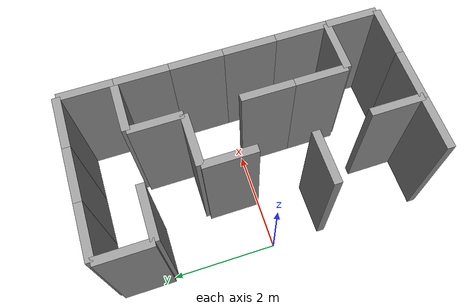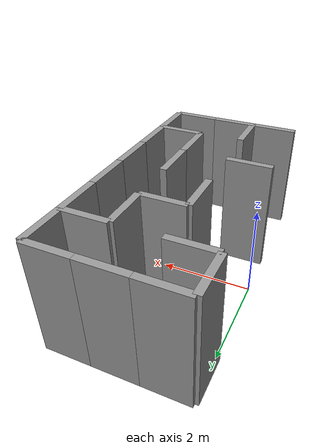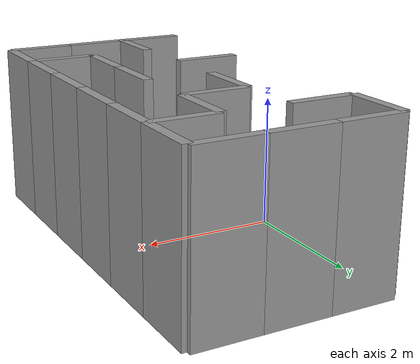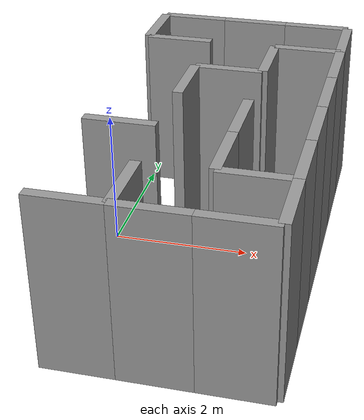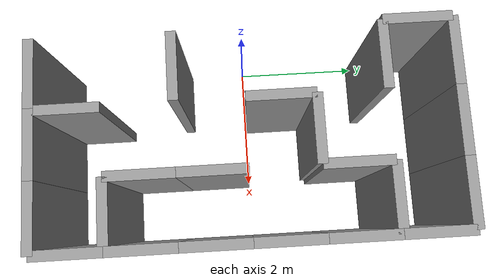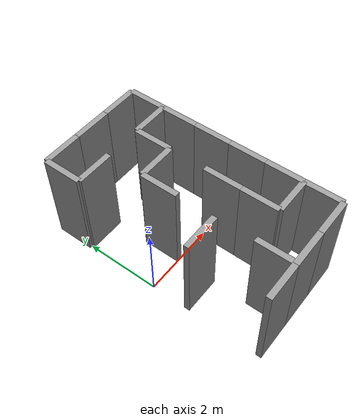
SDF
<sdf version="1.7">
 <model name="maze_6x6">
  <link name="mazeMap::Wall_124">
   <pose>1 0.5 0 0 -0 1.5708</pose>
   <inertial>
    <mass>1</mass>
    <inertia><ixx>1</ixx><ixy>0</ixy><ixz>0</ixz><iyy>1</iyy><iyz>0</iyz><izz>1</izz></inertia>
   </inertial>
   <visual name="Wall_124_Visual">
    <pose>0 0 1.25 0 -0 0</pose>
    <geometry><box><size>1 0.15 2.5</size></box></geometry>
    <material>
     <script><uri>file://media/materials/scripts/gazebo.material</uri><name>Gazebo/Grey</name></script>
     <ambient>1 1 1 1</ambient>
     <shader type="pixel"><normal_map>__default__</normal_map></shader>
     <diffuse>0.7 0.7 0.7 1</diffuse>
     <specular>0.01 0.01 0.01 1</specular>
     <emissive>0 0 0 1</emissive>
    </material>
    <meta><layer>0</layer></meta>
   </visual>
   <collision name="Wall_124_Collision">
    <pose>0 0 1.25 0 -0 0</pose>
    <geometry><box><size>1 0.15 2.5</size></box></geometry>
    <surface>
     <friction>
      <ode><mu>1</mu><mu2>1</mu2><fdir1>0 0 0</fdir1><slip1>0</slip1><slip2>0</slip2></ode>
      <torsional>
       <coefficient>1</coefficient>
       <patch_radius>0</patch_radius>
       <surface_radius>0</surface_radius>
       <use_patch_radius>1</use_patch_radius>
       <ode><slip>0</slip></ode>
      </torsional>
     </friction>
     <bounce><restitution_coefficient>0</restitution_coefficient><threshold>1e+06</threshold></bounce>
     <contact>
      <collide_without_contact>0</collide_without_contact>
      <collide_without_contact_bitmask>1</collide_without_contact_bitmask>
      <collide_bitmask>1</collide_bitmask>
      <ode>
       <soft_cfm>0</soft_cfm>
       <soft_erp>0.2</soft_erp>
       <kp>1e+13</kp>
       <kd>1</kd>
       <max_vel>0.01</max_vel>
       <min_depth>0</min_depth>
      </ode>
      <bullet>
       <split_impulse>1</split_impulse>
       <split_impulse_penetration_threshold>-0.01</split_impulse_penetration_threshold>
       <soft_cfm>0</soft_cfm>
       <soft_erp>0.2</soft_erp>
       <kp>1e+13</kp>
       <kd>1</kd>
      </bullet>
     </contact>
    </surface>
   </collision>
  </link>
  <link name="mazeMap::Wall_133">
   <pose>0.5 -3 0 0 -0 0</pose>
   <inertial>
    <mass>1</mass>
    <inertia><ixx>1</ixx><ixy>0</ixy><ixz>0</ixz><iyy>1</iyy><iyz>0</iyz><izz>1</izz></inertia>
   </inertial>
   <visual name="Wall_133_Visual">
    <pose>0 0 1.25 0 -0 0</pose>
    <geometry><box><size>1 0.15 2.5</size></box></geometry>
    <material>
     <script><uri>file://media/materials/scripts/gazebo.material</uri><name>Gazebo/Grey</name></script>
     <ambient>1 1 1 1</ambient>
     <shader type="pixel"><normal_map>__default__</normal_map></shader>
     <diffuse>0.7 0.7 0.7 1</diffuse>
     <specular>0.01 0.01 0.01 1</specular>
     <emissive>0 0 0 1</emissive>
    </material>
    <meta><layer>0</layer></meta>
   </visual>
   <collision name="Wall_133_Collision">
    <pose>0 0 1.25 0 -0 0</pose>
    <geometry><box><size>1 0.15 2.5</size></box></geometry>
    <surface>
     <friction>
      <ode><mu>1</mu><mu2>1</mu2><fdir1>0 0 0</fdir1><slip1>0</slip1><slip2>0</slip2></ode>
      <torsional>
       <coefficient>1</coefficient>
       <patch_radius>0</patch_radius>
       <surface_radius>0</surface_radius>
       <use_patch_radius>1</use_patch_radius>
       <ode><slip>0</slip></ode>
      </torsional>
     </friction>
     <bounce><restitution_coefficient>0</restitution_coefficient><threshold>1e+06</threshold></bounce>
     <contact>
      <collide_without_contact>0</collide_without_contact>
      <collide_without_contact_bitmask>1</collide_without_contact_bitmask>
      <collide_bitmask>1</collide_bitmask>
      <ode>
       <soft_cfm>0</soft_cfm>
       <soft_erp>0.2</soft_erp>
       <kp>1e+13</kp>
       <kd>1</kd>
       <max_vel>0.01</max_vel>
       <min_depth>0</min_depth>
      </ode>
      <bullet>
       <split_impulse>1</split_impulse>
       <split_impulse_penetration_threshold>-0.01</split_impulse_penetration_threshold>
       <soft_cfm>0</soft_cfm>
       <soft_erp>0.2</soft_erp>
       <kp>1e+13</kp>
       <kd>1</kd>
      </bullet>
     </contact>
    </surface>
   </collision>
  </link>
  <link name="mazeMap::Wall_134">
   <pose>1.03347 -2.51386 0 0 -0 1.5708</pose>
   <visual name="Wall_134_Visual">
    <pose>0 0 1.25 0 -0 0</pose>
    <geometry><box><size>1 0.15 2.5</size></box></geometry>
    <material>
     <script><uri>file://media/materials/scripts/gazebo.material</uri><name>Gazebo/Grey</name></script>
     <ambient>1 1 1 1</ambient>
     <shader type="pixel"/>
    </material>
    <meta><layer>0</layer></meta>
   </visual>
   <collision name="Wall_134_Collision">
    <pose>0 0 1.25 0 -0 0</pose>
    <geometry><box><size>1 0.15 2.5</size></box></geometry>
    <surface>
     <friction>
      <ode><mu>1</mu><mu2>1</mu2><fdir1>0 0 0</fdir1><slip1>0</slip1><slip2>0</slip2></ode>
      <torsional>
       <coefficient>1</coefficient>
       <patch_radius>0</patch_radius>
       <surface_radius>0</surface_radius>
       <use_patch_radius>1</use_patch_radius>
       <ode><slip>0</slip></ode>
      </torsional>
     </friction>
     <bounce><restitution_coefficient>0</restitution_coefficient><threshold>1e+06</threshold></bounce>
     <contact>
      <collide_without_contact>0</collide_without_contact>
      <collide_without_contact_bitmask>1</collide_without_contact_bitmask>
      <collide_bitmask>1</collide_bitmask>
      <ode>
       <soft_cfm>0</soft_cfm>
       <soft_erp>0.2</soft_erp>
       <kp>1e+13</kp>
       <kd>1</kd>
       <max_vel>0.01</max_vel>
       <min_depth>0</min_depth>
      </ode>
      <bullet>
       <split_impulse>1</split_impulse>
       <split_impulse_penetration_threshold>-0.01</split_impulse_penetration_threshold>
       <soft_cfm>0</soft_cfm>
       <soft_erp>0.2</soft_erp>
       <kp>1e+13</kp>
       <kd>1</kd>
      </bullet>
     </contact>
    </surface>
   </collision>
  </link>
  <link name="mazeMap::Wall_137">
   <pose>0.5 -1 0 0 -0 0</pose>
   <inertial>
    <mass>1</mass>
    <inertia><ixx>1</ixx><ixy>0</ixy><ixz>0</ixz><iyy>1</iyy><iyz>0</iyz><izz>1</izz></inertia>
   </inertial>
   <visual name="Wall_137_Visual">
    <pose>0 0 1.25 0 -0 0</pose>
    <geometry><box><size>1 0.15 2.5</size></box></geometry>
    <material>
     <script><uri>file://media/materials/scripts/gazebo.material</uri><name>Gazebo/Grey</name></script>
     <ambient>1 1 1 1</ambient>
     <shader type="pixel"><normal_map>__default__</normal_map></shader>
     <diffuse>0.7 0.7 0.7 1</diffuse>
     <specular>0.01 0.01 0.01 1</specular>
     <emissive>0 0 0 1</emissive>
    </material>
    <meta><layer>0</layer></meta>
   </visual>
   <collision name="Wall_137_Collision">
    <pose>0 0 1.25 0 -0 0</pose>
    <geometry><box><size>1 0.15 2.5</size></box></geometry>
    <surface>
     <friction>
      <ode><mu>1</mu><mu2>1</mu2><fdir1>0 0 0</fdir1><slip1>0</slip1><slip2>0</slip2></ode>
      <torsional>
       <coefficient>1</coefficient>
       <patch_radius>0</patch_radius>
       <surface_radius>0</surface_radius>
       <use_patch_radius>1</use_patch_radius>
       <ode><slip>0</slip></ode>
      </torsional>
     </friction>
     <bounce><restitution_coefficient>0</restitution_coefficient><threshold>1e+06</threshold></bounce>
     <contact>
      <collide_without_contact>0</collide_without_contact>
      <collide_without_contact_bitmask>1</collide_without_contact_bitmask>
      <collide_bitmask>1</collide_bitmask>
      <ode>
       <soft_cfm>0</soft_cfm>
       <soft_erp>0.2</soft_erp>
       <kp>1e+13</kp>
       <kd>1</kd>
       <max_vel>0.01</max_vel>
       <min_depth>0</min_depth>
      </ode>
      <bullet>
       <split_impulse>1</split_impulse>
       <split_impulse_penetration_threshold>-0.01</split_impulse_penetration_threshold>
       <soft_cfm>0</soft_cfm>
       <soft_erp>0.2</soft_erp>
       <kp>1e+13</kp>
       <kd>1</kd>
      </bullet>
     </contact>
    </surface>
   </collision>
  </link>
  <link name="mazeMap::Wall_141">
   <pose>1.5 -3 0 0 -0 3.14159</pose>
   <inertial>
    <mass>1</mass>
    <inertia><ixx>1</ixx><ixy>0</ixy><ixz>0</ixz><iyy>1</iyy><iyz>0</iyz><izz>1</izz></inertia>
   </inertial>
   <visual name="Wall_141_Visual">
    <pose>0 0 1.25 0 -0 0</pose>
    <geometry><box><size>1 0.15 2.5</size></box></geometry>
    <material>
     <script><uri>file://media/materials/scripts/gazebo.material</uri><name>Gazebo/Grey</name></script>
     <ambient>1 1 1 1</ambient>
     <shader type="pixel"><normal_map>__default__</normal_map></shader>
     <diffuse>0.7 0.7 0.7 1</diffuse>
     <specular>0.01 0.01 0.01 1</specular>
     <emissive>0 0 0 1</emissive>
    </material>
    <meta><layer>0</layer></meta>
   </visual>
   <collision name="Wall_141_Collision">
    <pose>0 0 1.25 0 -0 0</pose>
    <geometry><box><size>1 0.15 2.5</size></box></geometry>
    <surface>
     <friction>
      <ode><mu>1</mu><mu2>1</mu2><fdir1>0 0 0</fdir1><slip1>0</slip1><slip2>0</slip2></ode>
      <torsional>
       <coefficient>1</coefficient>
       <patch_radius>0</patch_radius>
       <surface_radius>0</surface_radius>
       <use_patch_radius>1</use_patch_radius>
       <ode><slip>0</slip></ode>
      </torsional>
     </friction>
     <bounce><restitution_coefficient>0</restitution_coefficient><threshold>1e+06</threshold></bounce>
     <contact>
      <collide_without_contact>0</collide_without_contact>
      <collide_without_contact_bitmask>1</collide_without_contact_bitmask>
      <collide_bitmask>1</collide_bitmask>
      <ode>
       <soft_cfm>0</soft_cfm>
       <soft_erp>0.2</soft_erp>
       <kp>1e+13</kp>
       <kd>1</kd>
       <max_vel>0.01</max_vel>
       <min_depth>0</min_depth>
      </ode>
      <bullet>
       <split_impulse>1</split_impulse>
       <split_impulse_penetration_threshold>-0.01</split_impulse_penetration_threshold>
       <soft_cfm>0</soft_cfm>
       <soft_erp>0.2</soft_erp>
       <kp>1e+13</kp>
       <kd>1</kd>
      </bullet>
     </contact>
    </surface>
   </collision>
  </link>
  <link name="mazeMap::Wall_145">
   <pose>2 -1.5 0 0 0 -1.5708</pose>
   <inertial>
    <mass>1</mass>
    <inertia><ixx>1</ixx><ixy>0</ixy><ixz>0</ixz><iyy>1</iyy><iyz>0</iyz><izz>1</izz></inertia>
   </inertial>
   <visual name="Wall_145_Visual">
    <pose>0 0 1.25 0 -0 0</pose>
    <geometry><box><size>1 0.15 2.5</size></box></geometry>
    <material>
     <script><uri>file://media/materials/scripts/gazebo.material</uri><name>Gazebo/Grey</name></script>
     <ambient>1 1 1 1</ambient>
     <shader type="pixel"><normal_map>__default__</normal_map></shader>
     <diffuse>0.7 0.7 0.7 1</diffuse>
     <specular>0.01 0.01 0.01 1</specular>
     <emissive>0 0 0 1</emissive>
    </material>
    <meta><layer>0</layer></meta>
   </visual>
   <collision name="Wall_145_Collision">
    <pose>0 0 1.25 0 -0 0</pose>
    <geometry><box><size>1 0.15 2.5</size></box></geometry>
    <surface>
     <friction>
      <ode><mu>1</mu><mu2>1</mu2><fdir1>0 0 0</fdir1><slip1>0</slip1><slip2>0</slip2></ode>
      <torsional>
       <coefficient>1</coefficient>
       <patch_radius>0</patch_radius>
       <surface_radius>0</surface_radius>
       <use_patch_radius>1</use_patch_radius>
       <ode><slip>0</slip></ode>
      </torsional>
     </friction>
     <bounce><restitution_coefficient>0</restitution_coefficient><threshold>1e+06</threshold></bounce>
     <contact>
      <collide_without_contact>0</collide_without_contact>
      <collide_without_contact_bitmask>1</collide_without_contact_bitmask>
      <collide_bitmask>1</collide_bitmask>
      <ode>
       <soft_cfm>0</soft_cfm>
       <soft_erp>0.2</soft_erp>
       <kp>1e+13</kp>
       <kd>1</kd>
       <max_vel>0.01</max_vel>
       <min_depth>0</min_depth>
      </ode>
      <bullet>
       <split_impulse>1</split_impulse>
       <split_impulse_penetration_threshold>-0.01</split_impulse_penetration_threshold>
       <soft_cfm>0</soft_cfm>
       <soft_erp>0.2</soft_erp>
       <kp>1e+13</kp>
       <kd>1</kd>
      </bullet>
     </contact>
    </surface>
   </collision>
  </link>
  <link name="mazeMap::Wall_146">
   <pose>2.5 -2 0 0 -0 0</pose>
   <inertial>
    <mass>1</mass>
    <inertia><ixx>1</ixx><ixy>0</ixy><ixz>0</ixz><iyy>1</iyy><iyz>0</iyz><izz>1</izz></inertia>
   </inertial>
   <visual name="Wall_146_Visual">
    <pose>0 0 1.25 0 -0 0</pose>
    <geometry><box><size>1 0.15 2.5</size></box></geometry>
    <material>
     <script><uri>file://media/materials/scripts/gazebo.material</uri><name>Gazebo/Grey</name></script>
     <ambient>1 1 1 1</ambient>
     <shader type="pixel"><normal_map>__default__</normal_map></shader>
     <diffuse>0.7 0.7 0.7 1</diffuse>
     <specular>0.01 0.01 0.01 1</specular>
     <emissive>0 0 0 1</emissive>
    </material>
    <meta><layer>0</layer></meta>
   </visual>
   <collision name="Wall_146_Collision">
    <pose>0 0 1.25 0 -0 0</pose>
    <geometry><box><size>1 0.15 2.5</size></box></geometry>
    <surface>
     <friction>
      <ode><mu>1</mu><mu2>1</mu2><fdir1>0 0 0</fdir1><slip1>0</slip1><slip2>0</slip2></ode>
      <torsional>
       <coefficient>1</coefficient>
       <patch_radius>0</patch_radius>
       <surface_radius>0</surface_radius>
       <use_patch_radius>1</use_patch_radius>
       <ode><slip>0</slip></ode>
      </torsional>
     </friction>
     <bounce><restitution_coefficient>0</restitution_coefficient><threshold>1e+06</threshold></bounce>
     <contact>
      <collide_without_contact>0</collide_without_contact>
      <collide_without_contact_bitmask>1</collide_without_contact_bitmask>
      <collide_bitmask>1</collide_bitmask>
      <ode>
       <soft_cfm>0</soft_cfm>
       <soft_erp>0.2</soft_erp>
       <kp>1e+13</kp>
       <kd>1</kd>
       <max_vel>0.01</max_vel>
       <min_depth>0</min_depth>
      </ode>
      <bullet>
       <split_impulse>1</split_impulse>
       <split_impulse_penetration_threshold>-0.01</split_impulse_penetration_threshold>
       <soft_cfm>0</soft_cfm>
       <soft_erp>0.2</soft_erp>
       <kp>1e+13</kp>
       <kd>1</kd>
      </bullet>
     </contact>
    </surface>
   </collision>
  </link>
  <link name="mazeMap::Wall_147">
   <pose>3 -2.5 0 0 0 -1.5708</pose>
   <inertial>
    <mass>1</mass>
    <inertia><ixx>1</ixx><ixy>0</ixy><ixz>0</ixz><iyy>1</iyy><iyz>0</iyz><izz>1</izz></inertia>
   </inertial>
   <visual name="Wall_147_Visual">
    <pose>0 0 1.25 0 -0 0</pose>
    <geometry><box><size>1 0.15 2.5</size></box></geometry>
    <material>
     <script><uri>file://media/materials/scripts/gazebo.material</uri><name>Gazebo/Grey</name></script>
     <ambient>1 1 1 1</ambient>
     <shader type="pixel"><normal_map>__default__</normal_map></shader>
     <diffuse>0.7 0.7 0.7 1</diffuse>
     <specular>0.01 0.01 0.01 1</specular>
     <emissive>0 0 0 1</emissive>
    </material>
    <meta><layer>0</layer></meta>
   </visual>
   <collision name="Wall_147_Collision">
    <pose>0 0 1.25 0 -0 0</pose>
    <geometry><box><size>1 0.15 2.5</size></box></geometry>
    <surface>
     <friction>
      <ode><mu>1</mu><mu2>1</mu2><fdir1>0 0 0</fdir1><slip1>0</slip1><slip2>0</slip2></ode>
      <torsional>
       <coefficient>1</coefficient>
       <patch_radius>0</patch_radius>
       <surface_radius>0</surface_radius>
       <use_patch_radius>1</use_patch_radius>
       <ode><slip>0</slip></ode>
      </torsional>
     </friction>
     <bounce><restitution_coefficient>0</restitution_coefficient><threshold>1e+06</threshold></bounce>
     <contact>
      <collide_without_contact>0</collide_without_contact>
      <collide_without_contact_bitmask>1</collide_without_contact_bitmask>
      <collide_bitmask>1</collide_bitmask>
      <ode>
       <soft_cfm>0</soft_cfm>
       <soft_erp>0.2</soft_erp>
       <kp>1e+13</kp>
       <kd>1</kd>
       <max_vel>0.01</max_vel>
       <min_depth>0</min_depth>
      </ode>
      <bullet>
       <split_impulse>1</split_impulse>
       <split_impulse_penetration_threshold>-0.01</split_impulse_penetration_threshold>
       <soft_cfm>0</soft_cfm>
       <soft_erp>0.2</soft_erp>
       <kp>1e+13</kp>
       <kd>1</kd>
      </bullet>
     </contact>
    </surface>
   </collision>
  </link>
  <link name="mazeMap::Wall_148">
   <pose>2.5 -3 0 0 -0 3.14159</pose>
   <inertial>
    <mass>1</mass>
    <inertia><ixx>1</ixx><ixy>0</ixy><ixz>0</ixz><iyy>1</iyy><iyz>0</iyz><izz>1</izz></inertia>
   </inertial>
   <visual name="Wall_148_Visual">
    <pose>0 0 1.25 0 -0 0</pose>
    <geometry><box><size>1 0.15 2.5</size></box></geometry>
    <material>
     <script><uri>file://media/materials/scripts/gazebo.material</uri><name>Gazebo/Grey</name></script>
     <ambient>1 1 1 1</ambient>
     <shader type="pixel"><normal_map>__default__</normal_map></shader>
     <diffuse>0.7 0.7 0.7 1</diffuse>
     <specular>0.01 0.01 0.01 1</specular>
     <emissive>0 0 0 1</emissive>
    </material>
    <meta><layer>0</layer></meta>
   </visual>
   <collision name="Wall_148_Collision">
    <pose>0 0 1.25 0 -0 0</pose>
    <geometry><box><size>1 0.15 2.5</size></box></geometry>
    <surface>
     <friction>
      <ode><mu>1</mu><mu2>1</mu2><fdir1>0 0 0</fdir1><slip1>0</slip1><slip2>0</slip2></ode>
      <torsional>
       <coefficient>1</coefficient>
       <patch_radius>0</patch_radius>
       <surface_radius>0</surface_radius>
       <use_patch_radius>1</use_patch_radius>
       <ode><slip>0</slip></ode>
      </torsional>
     </friction>
     <bounce><restitution_coefficient>0</restitution_coefficient><threshold>1e+06</threshold></bounce>
     <contact>
      <collide_without_contact>0</collide_without_contact>
      <collide_without_contact_bitmask>1</collide_without_contact_bitmask>
      <collide_bitmask>1</collide_bitmask>
      <ode>
       <soft_cfm>0</soft_cfm>
       <soft_erp>0.2</soft_erp>
       <kp>1e+13</kp>
       <kd>1</kd>
       <max_vel>0.01</max_vel>
       <min_depth>0</min_depth>
      </ode>
      <bullet>
       <split_impulse>1</split_impulse>
       <split_impulse_penetration_threshold>-0.01</split_impulse_penetration_threshold>
       <soft_cfm>0</soft_cfm>
       <soft_erp>0.2</soft_erp>
       <kp>1e+13</kp>
       <kd>1</kd>
      </bullet>
     </contact>
    </surface>
   </collision>
  </link>
  <link name="mazeMap::Wall_150">
   <pose>1.5 1 0 0 -0 0</pose>
   <inertial>
    <mass>1</mass>
    <inertia><ixx>1</ixx><ixy>0</ixy><ixz>0</ixz><iyy>1</iyy><iyz>0</iyz><izz>1</izz></inertia>
   </inertial>
   <visual name="Wall_150_Visual">
    <pose>0 0 1.25 0 -0 0</pose>
    <geometry><box><size>1 0.15 2.5</size></box></geometry>
    <material>
     <script><uri>file://media/materials/scripts/gazebo.material</uri><name>Gazebo/Grey</name></script>
     <ambient>1 1 1 1</ambient>
     <shader type="pixel"><normal_map>__default__</normal_map></shader>
     <diffuse>0.7 0.7 0.7 1</diffuse>
     <specular>0.01 0.01 0.01 1</specular>
     <emissive>0 0 0 1</emissive>
    </material>
    <meta><layer>0</layer></meta>
   </visual>
   <collision name="Wall_150_Collision">
    <pose>0 0 1.25 0 -0 0</pose>
    <geometry><box><size>1 0.15 2.5</size></box></geometry>
    <surface>
     <friction>
      <ode><mu>1</mu><mu2>1</mu2><fdir1>0 0 0</fdir1><slip1>0</slip1><slip2>0</slip2></ode>
      <torsional>
       <coefficient>1</coefficient>
       <patch_radius>0</patch_radius>
       <surface_radius>0</surface_radius>
       <use_patch_radius>1</use_patch_radius>
       <ode><slip>0</slip></ode>
      </torsional>
     </friction>
     <bounce><restitution_coefficient>0</restitution_coefficient><threshold>1e+06</threshold></bounce>
     <contact>
      <collide_without_contact>0</collide_without_contact>
      <collide_without_contact_bitmask>1</collide_without_contact_bitmask>
      <collide_bitmask>1</collide_bitmask>
      <ode>
       <soft_cfm>0</soft_cfm>
       <soft_erp>0.2</soft_erp>
       <kp>1e+13</kp>
       <kd>1</kd>
       <max_vel>0.01</max_vel>
       <min_depth>0</min_depth>
      </ode>
      <bullet>
       <split_impulse>1</split_impulse>
       <split_impulse_penetration_threshold>-0.01</split_impulse_penetration_threshold>
       <soft_cfm>0</soft_cfm>
       <soft_erp>0.2</soft_erp>
       <kp>1e+13</kp>
       <kd>1</kd>
      </bullet>
     </contact>
    </surface>
   </collision>
  </link>
  <link name="mazeMap::Wall_154">
   <pose>2 -0.5 0 0 0 -1.5708</pose>
   <inertial>
    <mass>1</mass>
    <inertia><ixx>1</ixx><ixy>0</ixy><ixz>0</ixz><iyy>1</iyy><iyz>0</iyz><izz>1</izz></inertia>
   </inertial>
   <visual name="Wall_154_Visual">
    <pose>0 0 1.25 0 -0 0</pose>
    <geometry><box><size>1 0.15 2.5</size></box></geometry>
    <material>
     <script><uri>file://media/materials/scripts/gazebo.material</uri><name>Gazebo/Grey</name></script>
     <ambient>1 1 1 1</ambient>
     <shader type="pixel"><normal_map>__default__</normal_map></shader>
     <diffuse>0.7 0.7 0.7 1</diffuse>
     <specular>0.01 0.01 0.01 1</specular>
     <emissive>0 0 0 1</emissive>
    </material>
    <meta><layer>0</layer></meta>
   </visual>
   <collision name="Wall_154_Collision">
    <pose>0 0 1.25 0 -0 0</pose>
    <geometry><box><size>1 0.15 2.5</size></box></geometry>
    <surface>
     <friction>
      <ode><mu>1</mu><mu2>1</mu2><fdir1>0 0 0</fdir1><slip1>0</slip1><slip2>0</slip2></ode>
      <torsional>
       <coefficient>1</coefficient>
       <patch_radius>0</patch_radius>
       <surface_radius>0</surface_radius>
       <use_patch_radius>1</use_patch_radius>
       <ode><slip>0</slip></ode>
      </torsional>
     </friction>
     <bounce><restitution_coefficient>0</restitution_coefficient><threshold>1e+06</threshold></bounce>
     <contact>
      <collide_without_contact>0</collide_without_contact>
      <collide_without_contact_bitmask>1</collide_without_contact_bitmask>
      <collide_bitmask>1</collide_bitmask>
      <ode>
       <soft_cfm>0</soft_cfm>
       <soft_erp>0.2</soft_erp>
       <kp>1e+13</kp>
       <kd>1</kd>
       <max_vel>0.01</max_vel>
       <min_depth>0</min_depth>
      </ode>
      <bullet>
       <split_impulse>1</split_impulse>
       <split_impulse_penetration_threshold>-0.01</split_impulse_penetration_threshold>
       <soft_cfm>0</soft_cfm>
       <soft_erp>0.2</soft_erp>
       <kp>1e+13</kp>
       <kd>1</kd>
      </bullet>
     </contact>
    </surface>
   </collision>
  </link>
  <link name="mazeMap::Wall_156">
   <pose>3 -1.5 0 0 -0 1.5708</pose>
   <inertial>
    <mass>1</mass>
    <inertia><ixx>1</ixx><ixy>0</ixy><ixz>0</ixz><iyy>1</iyy><iyz>0</iyz><izz>1</izz></inertia>
   </inertial>
   <visual name="Wall_156_Visual">
    <pose>0 0 1.25 0 -0 0</pose>
    <geometry><box><size>1 0.15 2.5</size></box></geometry>
    <material>
     <script><uri>file://media/materials/scripts/gazebo.material</uri><name>Gazebo/Grey</name></script>
     <ambient>1 1 1 1</ambient>
     <shader type="pixel"><normal_map>__default__</normal_map></shader>
     <diffuse>0.7 0.7 0.7 1</diffuse>
     <specular>0.01 0.01 0.01 1</specular>
     <emissive>0 0 0 1</emissive>
    </material>
    <meta><layer>0</layer></meta>
   </visual>
   <collision name="Wall_156_Collision">
    <pose>0 0 1.25 0 -0 0</pose>
    <geometry><box><size>1 0.15 2.5</size></box></geometry>
    <surface>
     <friction>
      <ode><mu>1</mu><mu2>1</mu2><fdir1>0 0 0</fdir1><slip1>0</slip1><slip2>0</slip2></ode>
      <torsional>
       <coefficient>1</coefficient>
       <patch_radius>0</patch_radius>
       <surface_radius>0</surface_radius>
       <use_patch_radius>1</use_patch_radius>
       <ode><slip>0</slip></ode>
      </torsional>
     </friction>
     <bounce><restitution_coefficient>0</restitution_coefficient><threshold>1e+06</threshold></bounce>
     <contact>
      <collide_without_contact>0</collide_without_contact>
      <collide_without_contact_bitmask>1</collide_without_contact_bitmask>
      <collide_bitmask>1</collide_bitmask>
      <ode>
       <soft_cfm>0</soft_cfm>
       <soft_erp>0.2</soft_erp>
       <kp>1e+13</kp>
       <kd>1</kd>
       <max_vel>0.01</max_vel>
       <min_depth>0</min_depth>
      </ode>
      <bullet>
       <split_impulse>1</split_impulse>
       <split_impulse_penetration_threshold>-0.01</split_impulse_penetration_threshold>
       <soft_cfm>0</soft_cfm>
       <soft_erp>0.2</soft_erp>
       <kp>1e+13</kp>
       <kd>1</kd>
      </bullet>
     </contact>
    </surface>
   </collision>
  </link>
  <link name="mazeMap::Wall_160">
   <pose>3 -0.5 0 0 0 -1.5708</pose>
   <inertial>
    <mass>1</mass>
    <inertia><ixx>1</ixx><ixy>0</ixy><ixz>0</ixz><iyy>1</iyy><iyz>0</iyz><izz>1</izz></inertia>
   </inertial>
   <visual name="Wall_160_Visual">
    <pose>0 0 1.25 0 -0 0</pose>
    <geometry><box><size>1 0.15 2.5</size></box></geometry>
    <material>
     <script><uri>file://media/materials/scripts/gazebo.material</uri><name>Gazebo/Grey</name></script>
     <ambient>1 1 1 1</ambient>
     <shader type="pixel"><normal_map>__default__</normal_map></shader>
     <diffuse>0.7 0.7 0.7 1</diffuse>
     <specular>0.01 0.01 0.01 1</specular>
     <emissive>0 0 0 1</emissive>
    </material>
    <meta><layer>0</layer></meta>
   </visual>
   <collision name="Wall_160_Collision">
    <pose>0 0 1.25 0 -0 0</pose>
    <geometry><box><size>1 0.15 2.5</size></box></geometry>
    <surface>
     <friction>
      <ode><mu>1</mu><mu2>1</mu2><fdir1>0 0 0</fdir1><slip1>0</slip1><slip2>0</slip2></ode>
      <torsional>
       <coefficient>1</coefficient>
       <patch_radius>0</patch_radius>
       <surface_radius>0</surface_radius>
       <use_patch_radius>1</use_patch_radius>
       <ode><slip>0</slip></ode>
      </torsional>
     </friction>
     <bounce><restitution_coefficient>0</restitution_coefficient><threshold>1e+06</threshold></bounce>
     <contact>
      <collide_without_contact>0</collide_without_contact>
      <collide_without_contact_bitmask>1</collide_without_contact_bitmask>
      <collide_bitmask>1</collide_bitmask>
      <ode>
       <soft_cfm>0</soft_cfm>
       <soft_erp>0.2</soft_erp>
       <kp>1e+13</kp>
       <kd>1</kd>
       <max_vel>0.01</max_vel>
       <min_depth>0</min_depth>
      </ode>
      <bullet>
       <split_impulse>1</split_impulse>
       <split_impulse_penetration_threshold>-0.01</split_impulse_penetration_threshold>
       <soft_cfm>0</soft_cfm>
       <soft_erp>0.2</soft_erp>
       <kp>1e+13</kp>
       <kd>1</kd>
      </bullet>
     </contact>
    </surface>
   </collision>
  </link>
  <link name="mazeMap::Wall_162">
   <pose>3 0.5 0 0 -0 1.5708</pose>
   <inertial>
    <mass>1</mass>
    <inertia><ixx>1</ixx><ixy>0</ixy><ixz>0</ixz><iyy>1</iyy><iyz>0</iyz><izz>1</izz></inertia>
   </inertial>
   <visual name="Wall_162_Visual">
    <pose>0 0 1.25 0 -0 0</pose>
    <geometry><box><size>1 0.15 2.5</size></box></geometry>
    <material>
     <script><uri>file://media/materials/scripts/gazebo.material</uri><name>Gazebo/Grey</name></script>
     <ambient>1 1 1 1</ambient>
     <shader type="pixel"><normal_map>__default__</normal_map></shader>
     <diffuse>0.7 0.7 0.7 1</diffuse>
     <specular>0.01 0.01 0.01 1</specular>
     <emissive>0 0 0 1</emissive>
    </material>
    <meta><layer>0</layer></meta>
   </visual>
   <collision name="Wall_162_Collision">
    <pose>0 0 1.25 0 -0 0</pose>
    <geometry><box><size>1 0.15 2.5</size></box></geometry>
    <surface>
     <friction>
      <ode><mu>1</mu><mu2>1</mu2><fdir1>0 0 0</fdir1><slip1>0</slip1><slip2>0</slip2></ode>
      <torsional>
       <coefficient>1</coefficient>
       <patch_radius>0</patch_radius>
       <surface_radius>0</surface_radius>
       <use_patch_radius>1</use_patch_radius>
       <ode><slip>0</slip></ode>
      </torsional>
     </friction>
     <bounce><restitution_coefficient>0</restitution_coefficient><threshold>1e+06</threshold></bounce>
     <contact>
      <collide_without_contact>0</collide_without_contact>
      <collide_without_contact_bitmask>1</collide_without_contact_bitmask>
      <collide_bitmask>1</collide_bitmask>
      <ode>
       <soft_cfm>0</soft_cfm>
       <soft_erp>0.2</soft_erp>
       <kp>1e+13</kp>
       <kd>1</kd>
       <max_vel>0.01</max_vel>
       <min_depth>0</min_depth>
      </ode>
      <bullet>
       <split_impulse>1</split_impulse>
       <split_impulse_penetration_threshold>-0.01</split_impulse_penetration_threshold>
       <soft_cfm>0</soft_cfm>
       <soft_erp>0.2</soft_erp>
       <kp>1e+13</kp>
       <kd>1</kd>
      </bullet>
     </contact>
    </surface>
   </collision>
  </link>
  <link name="mazeMap::Wall_186">
   <pose>0 2.5 0 0 0 -1.5708</pose>
   <inertial>
    <mass>1</mass>
    <inertia><ixx>1</ixx><ixy>0</ixy><ixz>0</ixz><iyy>1</iyy><iyz>0</iyz><izz>1</izz></inertia>
   </inertial>
   <visual name="Wall_186_Visual">
    <pose>0 0 1.25 0 -0 0</pose>
    <geometry><box><size>1 0.15 2.5</size></box></geometry>
    <material>
     <script><uri>file://media/materials/scripts/gazebo.material</uri><name>Gazebo/Grey</name></script>
     <ambient>1 1 1 1</ambient>
     <shader type="pixel"><normal_map>__default__</normal_map></shader>
     <diffuse>0.7 0.7 0.7 1</diffuse>
     <specular>0.01 0.01 0.01 1</specular>
     <emissive>0 0 0 1</emissive>
    </material>
    <meta><layer>0</layer></meta>
   </visual>
   <collision name="Wall_186_Collision">
    <pose>0 0 1.25 0 -0 0</pose>
    <geometry><box><size>1 0.15 2.5</size></box></geometry>
    <surface>
     <friction>
      <ode><mu>1</mu><mu2>1</mu2><fdir1>0 0 0</fdir1><slip1>0</slip1><slip2>0</slip2></ode>
      <torsional>
       <coefficient>1</coefficient>
       <patch_radius>0</patch_radius>
       <surface_radius>0</surface_radius>
       <use_patch_radius>1</use_patch_radius>
       <ode><slip>0</slip></ode>
      </torsional>
     </friction>
     <bounce><restitution_coefficient>0</restitution_coefficient><threshold>1e+06</threshold></bounce>
     <contact>
      <collide_without_contact>0</collide_without_contact>
      <collide_without_contact_bitmask>1</collide_without_contact_bitmask>
      <collide_bitmask>1</collide_bitmask>
      <ode>
       <soft_cfm>0</soft_cfm>
       <soft_erp>0.2</soft_erp>
       <kp>1e+13</kp>
       <kd>1</kd>
       <max_vel>0.01</max_vel>
       <min_depth>0</min_depth>
      </ode>
      <bullet>
       <split_impulse>1</split_impulse>
       <split_impulse_penetration_threshold>-0.01</split_impulse_penetration_threshold>
       <soft_cfm>0</soft_cfm>
       <soft_erp>0.2</soft_erp>
       <kp>1e+13</kp>
       <kd>1</kd>
      </bullet>
     </contact>
    </surface>
   </collision>
  </link>
  <link name="mazeMap::Wall_187">
   <pose>0.5 2 0 0 -0 0</pose>
   <inertial>
    <mass>1</mass>
    <inertia><ixx>1</ixx><ixy>0</ixy><ixz>0</ixz><iyy>1</iyy><iyz>0</iyz><izz>1</izz></inertia>
   </inertial>
   <visual name="Wall_187_Visual">
    <pose>0 0 1.25 0 -0 0</pose>
    <geometry><box><size>1 0.15 2.5</size></box></geometry>
    <material>
     <script><uri>file://media/materials/scripts/gazebo.material</uri><name>Gazebo/Grey</name></script>
     <ambient>1 1 1 1</ambient>
     <shader type="pixel"><normal_map>__default__</normal_map></shader>
     <diffuse>0.7 0.7 0.7 1</diffuse>
     <specular>0.01 0.01 0.01 1</specular>
     <emissive>0 0 0 1</emissive>
    </material>
    <meta><layer>0</layer></meta>
   </visual>
   <collision name="Wall_187_Collision">
    <pose>0 0 1.25 0 -0 0</pose>
    <geometry><box><size>1 0.15 2.5</size></box></geometry>
    <surface>
     <friction>
      <ode><mu>1</mu><mu2>1</mu2><fdir1>0 0 0</fdir1><slip1>0</slip1><slip2>0</slip2></ode>
      <torsional>
       <coefficient>1</coefficient>
       <patch_radius>0</patch_radius>
       <surface_radius>0</surface_radius>
       <use_patch_radius>1</use_patch_radius>
       <ode><slip>0</slip></ode>
      </torsional>
     </friction>
     <bounce><restitution_coefficient>0</restitution_coefficient><threshold>1e+06</threshold></bounce>
     <contact>
      <collide_without_contact>0</collide_without_contact>
      <collide_without_contact_bitmask>1</collide_without_contact_bitmask>
      <collide_bitmask>1</collide_bitmask>
      <ode>
       <soft_cfm>0</soft_cfm>
       <soft_erp>0.2</soft_erp>
       <kp>1e+13</kp>
       <kd>1</kd>
       <max_vel>0.01</max_vel>
       <min_depth>0</min_depth>
      </ode>
      <bullet>
       <split_impulse>1</split_impulse>
       <split_impulse_penetration_threshold>-0.01</split_impulse_penetration_threshold>
       <soft_cfm>0</soft_cfm>
       <soft_erp>0.2</soft_erp>
       <kp>1e+13</kp>
       <kd>1</kd>
      </bullet>
     </contact>
    </surface>
   </collision>
  </link>
  <link name="mazeMap::Wall_189">
   <pose>1.5 3 0 0 -0 0</pose>
   <inertial>
    <mass>1</mass>
    <inertia><ixx>1</ixx><ixy>0</ixy><ixz>0</ixz><iyy>1</iyy><iyz>0</iyz><izz>1</izz></inertia>
   </inertial>
   <visual name="Wall_189_Visual">
    <pose>0 0 1.25 0 -0 0</pose>
    <geometry><box><size>1 0.15 2.5</size></box></geometry>
    <material>
     <script><uri>file://media/materials/scripts/gazebo.material</uri><name>Gazebo/Grey</name></script>
     <ambient>1 1 1 1</ambient>
     <shader type="pixel"><normal_map>__default__</normal_map></shader>
     <diffuse>0.7 0.7 0.7 1</diffuse>
     <specular>0.01 0.01 0.01 1</specular>
     <emissive>0 0 0 1</emissive>
    </material>
    <meta><layer>0</layer></meta>
   </visual>
   <collision name="Wall_189_Collision">
    <pose>0 0 1.25 0 -0 0</pose>
    <geometry><box><size>1 0.15 2.5</size></box></geometry>
    <surface>
     <friction>
      <ode><mu>1</mu><mu2>1</mu2><fdir1>0 0 0</fdir1><slip1>0</slip1><slip2>0</slip2></ode>
      <torsional>
       <coefficient>1</coefficient>
       <patch_radius>0</patch_radius>
       <surface_radius>0</surface_radius>
       <use_patch_radius>1</use_patch_radius>
       <ode><slip>0</slip></ode>
      </torsional>
     </friction>
     <bounce><restitution_coefficient>0</restitution_coefficient><threshold>1e+06</threshold></bounce>
     <contact>
      <collide_without_contact>0</collide_without_contact>
      <collide_without_contact_bitmask>1</collide_without_contact_bitmask>
      <collide_bitmask>1</collide_bitmask>
      <ode>
       <soft_cfm>0</soft_cfm>
       <soft_erp>0.2</soft_erp>
       <kp>1e+13</kp>
       <kd>1</kd>
       <max_vel>0.01</max_vel>
       <min_depth>0</min_depth>
      </ode>
      <bullet>
       <split_impulse>1</split_impulse>
       <split_impulse_penetration_threshold>-0.01</split_impulse_penetration_threshold>
       <soft_cfm>0</soft_cfm>
       <soft_erp>0.2</soft_erp>
       <kp>1e+13</kp>
       <kd>1</kd>
      </bullet>
     </contact>
    </surface>
   </collision>
  </link>
  <link name="mazeMap::Wall_191">
   <pose>2.5 2 0 0 -0 0</pose>
   <inertial>
    <mass>1</mass>
    <inertia><ixx>1</ixx><ixy>0</ixy><ixz>0</ixz><iyy>1</iyy><iyz>0</iyz><izz>1</izz></inertia>
   </inertial>
   <visual name="Wall_191_Visual">
    <pose>0 0 1.25 0 -0 0</pose>
    <geometry><box><size>1 0.15 2.5</size></box></geometry>
    <material>
     <script><uri>file://media/materials/scripts/gazebo.material</uri><name>Gazebo/Grey</name></script>
     <ambient>1 1 1 1</ambient>
     <shader type="pixel"><normal_map>__default__</normal_map></shader>
     <diffuse>0.7 0.7 0.7 1</diffuse>
     <specular>0.01 0.01 0.01 1</specular>
     <emissive>0 0 0 1</emissive>
    </material>
    <meta><layer>0</layer></meta>
   </visual>
   <collision name="Wall_191_Collision">
    <pose>0 0 1.25 0 -0 0</pose>
    <geometry><box><size>1 0.15 2.5</size></box></geometry>
    <surface>
     <friction>
      <ode><mu>1</mu><mu2>1</mu2><fdir1>0 0 0</fdir1><slip1>0</slip1><slip2>0</slip2></ode>
      <torsional>
       <coefficient>1</coefficient>
       <patch_radius>0</patch_radius>
       <surface_radius>0</surface_radius>
       <use_patch_radius>1</use_patch_radius>
       <ode><slip>0</slip></ode>
      </torsional>
     </friction>
     <bounce><restitution_coefficient>0</restitution_coefficient><threshold>1e+06</threshold></bounce>
     <contact>
      <collide_without_contact>0</collide_without_contact>
      <collide_without_contact_bitmask>1</collide_without_contact_bitmask>
      <collide_bitmask>1</collide_bitmask>
      <ode>
       <soft_cfm>0</soft_cfm>
       <soft_erp>0.2</soft_erp>
       <kp>1e+13</kp>
       <kd>1</kd>
       <max_vel>0.01</max_vel>
       <min_depth>0</min_depth>
      </ode>
      <bullet>
       <split_impulse>1</split_impulse>
       <split_impulse_penetration_threshold>-0.01</split_impulse_penetration_threshold>
       <soft_cfm>0</soft_cfm>
       <soft_erp>0.2</soft_erp>
       <kp>1e+13</kp>
       <kd>1</kd>
      </bullet>
     </contact>
    </surface>
   </collision>
  </link>
  <link name="mazeMap::Wall_192">
   <pose>3 2.5 0 0 -0 1.5708</pose>
   <inertial>
    <mass>1</mass>
    <inertia><ixx>1</ixx><ixy>0</ixy><ixz>0</ixz><iyy>1</iyy><iyz>0</iyz><izz>1</izz></inertia>
   </inertial>
   <visual name="Wall_192_Visual">
    <pose>0 0 1.25 0 -0 0</pose>
    <geometry><box><size>1 0.15 2.5</size></box></geometry>
    <material>
     <script><uri>file://media/materials/scripts/gazebo.material</uri><name>Gazebo/Grey</name></script>
     <ambient>1 1 1 1</ambient>
     <shader type="pixel"><normal_map>__default__</normal_map></shader>
     <diffuse>0.7 0.7 0.7 1</diffuse>
     <specular>0.01 0.01 0.01 1</specular>
     <emissive>0 0 0 1</emissive>
    </material>
    <meta><layer>0</layer></meta>
   </visual>
   <collision name="Wall_192_Collision">
    <pose>0 0 1.25 0 -0 0</pose>
    <geometry><box><size>1 0.15 2.5</size></box></geometry>
    <surface>
     <friction>
      <ode><mu>1</mu><mu2>1</mu2><fdir1>0 0 0</fdir1><slip1>0</slip1><slip2>0</slip2></ode>
      <torsional>
       <coefficient>1</coefficient>
       <patch_radius>0</patch_radius>
       <surface_radius>0</surface_radius>
       <use_patch_radius>1</use_patch_radius>
       <ode><slip>0</slip></ode>
      </torsional>
     </friction>
     <bounce><restitution_coefficient>0</restitution_coefficient><threshold>1e+06</threshold></bounce>
     <contact>
      <collide_without_contact>0</collide_without_contact>
      <collide_without_contact_bitmask>1</collide_without_contact_bitmask>
      <collide_bitmask>1</collide_bitmask>
      <ode>
       <soft_cfm>0</soft_cfm>
       <soft_erp>0.2</soft_erp>
       <kp>1e+13</kp>
       <kd>1</kd>
       <max_vel>0.01</max_vel>
       <min_depth>0</min_depth>
      </ode>
      <bullet>
       <split_impulse>1</split_impulse>
       <split_impulse_penetration_threshold>-0.01</split_impulse_penetration_threshold>
       <soft_cfm>0</soft_cfm>
       <soft_erp>0.2</soft_erp>
       <kp>1e+13</kp>
       <kd>1</kd>
      </bullet>
     </contact>
    </surface>
   </collision>
  </link>
  <link name="mazeMap::Wall_193">
   <pose>2.5 3 0 0 -0 3.14159</pose>
   <inertial>
    <mass>1</mass>
    <inertia><ixx>1</ixx><ixy>0</ixy><ixz>0</ixz><iyy>1</iyy><iyz>0</iyz><izz>1</izz></inertia>
   </inertial>
   <visual name="Wall_193_Visual">
    <pose>0 0 1.25 0 -0 0</pose>
    <geometry><box><size>1 0.15 2.5</size></box></geometry>
    <material>
     <script><uri>file://media/materials/scripts/gazebo.material</uri><name>Gazebo/Grey</name></script>
     <ambient>1 1 1 1</ambient>
     <shader type="pixel"><normal_map>__default__</normal_map></shader>
     <diffuse>0.7 0.7 0.7 1</diffuse>
     <specular>0.01 0.01 0.01 1</specular>
     <emissive>0 0 0 1</emissive>
    </material>
    <meta><layer>0</layer></meta>
   </visual>
   <collision name="Wall_193_Collision">
    <pose>0 0 1.25 0 -0 0</pose>
    <geometry><box><size>1 0.15 2.5</size></box></geometry>
    <surface>
     <friction>
      <ode><mu>1</mu><mu2>1</mu2><fdir1>0 0 0</fdir1><slip1>0</slip1><slip2>0</slip2></ode>
      <torsional>
       <coefficient>1</coefficient>
       <patch_radius>0</patch_radius>
       <surface_radius>0</surface_radius>
       <use_patch_radius>1</use_patch_radius>
       <ode><slip>0</slip></ode>
      </torsional>
     </friction>
     <bounce><restitution_coefficient>0</restitution_coefficient><threshold>1e+06</threshold></bounce>
     <contact>
      <collide_without_contact>0</collide_without_contact>
      <collide_without_contact_bitmask>1</collide_without_contact_bitmask>
      <collide_bitmask>1</collide_bitmask>
      <ode>
       <soft_cfm>0</soft_cfm>
       <soft_erp>0.2</soft_erp>
       <kp>1e+13</kp>
       <kd>1</kd>
       <max_vel>0.01</max_vel>
       <min_depth>0</min_depth>
      </ode>
      <bullet>
       <split_impulse>1</split_impulse>
       <split_impulse_penetration_threshold>-0.01</split_impulse_penetration_threshold>
       <soft_cfm>0</soft_cfm>
       <soft_erp>0.2</soft_erp>
       <kp>1e+13</kp>
       <kd>1</kd>
      </bullet>
     </contact>
    </surface>
   </collision>
  </link>
  <link name="mazeMap::Wall_195">
   <pose>3 1.5 0 0 0 -1.5708</pose>
   <inertial>
    <mass>1</mass>
    <inertia><ixx>1</ixx><ixy>0</ixy><ixz>0</ixz><iyy>1</iyy><iyz>0</iyz><izz>1</izz></inertia>
   </inertial>
   <visual name="Wall_195_Visual">
    <pose>0 0 1.25 0 -0 0</pose>
    <geometry><box><size>1 0.15 2.5</size></box></geometry>
    <material>
     <script><uri>file://media/materials/scripts/gazebo.material</uri><name>Gazebo/Grey</name></script>
     <ambient>1 1 1 1</ambient>
     <shader type="pixel"><normal_map>__default__</normal_map></shader>
     <diffuse>0.7 0.7 0.7 1</diffuse>
     <specular>0.01 0.01 0.01 1</specular>
     <emissive>0 0 0 1</emissive>
    </material>
    <meta><layer>0</layer></meta>
   </visual>
   <collision name="Wall_195_Collision">
    <pose>0 0 1.25 0 -0 0</pose>
    <geometry><box><size>1 0.15 2.5</size></box></geometry>
    <surface>
     <friction>
      <ode><mu>1</mu><mu2>1</mu2><fdir1>0 0 0</fdir1><slip1>0</slip1><slip2>0</slip2></ode>
      <torsional>
       <coefficient>1</coefficient>
       <patch_radius>0</patch_radius>
       <surface_radius>0</surface_radius>
       <use_patch_radius>1</use_patch_radius>
       <ode><slip>0</slip></ode>
      </torsional>
     </friction>
     <bounce><restitution_coefficient>0</restitution_coefficient><threshold>1e+06</threshold></bounce>
     <contact>
      <collide_without_contact>0</collide_without_contact>
      <collide_without_contact_bitmask>1</collide_without_contact_bitmask>
      <collide_bitmask>1</collide_bitmask>
      <ode>
       <soft_cfm>0</soft_cfm>
       <soft_erp>0.2</soft_erp>
       <kp>1e+13</kp>
       <kd>1</kd>
       <max_vel>0.01</max_vel>
       <min_depth>0</min_depth>
      </ode>
      <bullet>
       <split_impulse>1</split_impulse>
       <split_impulse_penetration_threshold>-0.01</split_impulse_penetration_threshold>
       <soft_cfm>0</soft_cfm>
       <soft_erp>0.2</soft_erp>
       <kp>1e+13</kp>
       <kd>1</kd>
      </bullet>
     </contact>
    </surface>
   </collision>
  </link>
  <link name="mazeMap::Wall_197">
   <pose>2 1.5 0 0 0 -1.5708</pose>
   <inertial>
    <mass>1</mass>
    <inertia><ixx>1</ixx><ixy>0</ixy><ixz>0</ixz><iyy>1</iyy><iyz>0</iyz><izz>1</izz></inertia>
   </inertial>
   <visual name="Wall_197_Visual">
    <pose>0 0 1.25 0 -0 0</pose>
    <geometry><box><size>1 0.15 2.5</size></box></geometry>
    <material>
     <script><uri>file://media/materials/scripts/gazebo.material</uri><name>Gazebo/Grey</name></script>
     <ambient>1 1 1 1</ambient>
     <shader type="pixel"><normal_map>__default__</normal_map></shader>
     <diffuse>0.7 0.7 0.7 1</diffuse>
     <specular>0.01 0.01 0.01 1</specular>
     <emissive>0 0 0 1</emissive>
    </material>
    <meta><layer>0</layer></meta>
   </visual>
   <collision name="Wall_197_Collision">
    <pose>0 0 1.25 0 -0 0</pose>
    <geometry><box><size>1 0.15 2.5</size></box></geometry>
    <surface>
     <friction>
      <ode><mu>1</mu><mu2>1</mu2><fdir1>0 0 0</fdir1><slip1>0</slip1><slip2>0</slip2></ode>
      <torsional>
       <coefficient>1</coefficient>
       <patch_radius>0</patch_radius>
       <surface_radius>0</surface_radius>
       <use_patch_radius>1</use_patch_radius>
       <ode><slip>0</slip></ode>
      </torsional>
     </friction>
     <bounce><restitution_coefficient>0</restitution_coefficient><threshold>1e+06</threshold></bounce>
     <contact>
      <collide_without_contact>0</collide_without_contact>
      <collide_without_contact_bitmask>1</collide_without_contact_bitmask>
      <collide_bitmask>1</collide_bitmask>
      <ode>
       <soft_cfm>0</soft_cfm>
       <soft_erp>0.2</soft_erp>
       <kp>1e+13</kp>
       <kd>1</kd>
       <max_vel>0.01</max_vel>
       <min_depth>0</min_depth>
      </ode>
      <bullet>
       <split_impulse>1</split_impulse>
       <split_impulse_penetration_threshold>-0.01</split_impulse_penetration_threshold>
       <soft_cfm>0</soft_cfm>
       <soft_erp>0.2</soft_erp>
       <kp>1e+13</kp>
       <kd>1</kd>
      </bullet>
     </contact>
    </surface>
   </collision>
  </link>
  <link name="mazeMap::Wall_199">
   <pose>0.5 3 0 0 -0 0</pose>
   <inertial>
    <mass>1</mass>
    <inertia><ixx>1</ixx><ixy>0</ixy><ixz>0</ixz><iyy>1</iyy><iyz>0</iyz><izz>1</izz></inertia>
   </inertial>
   <visual name="Wall_199_Visual">
    <pose>0 0 1.25 0 -0 0</pose>
    <geometry><box><size>1 0.15 2.5</size></box></geometry>
    <material>
     <script><uri>file://media/materials/scripts/gazebo.material</uri><name>Gazebo/Grey</name></script>
     <ambient>1 1 1 1</ambient>
     <shader type="pixel"><normal_map>__default__</normal_map></shader>
     <diffuse>0.7 0.7 0.7 1</diffuse>
     <specular>0.01 0.01 0.01 1</specular>
     <emissive>0 0 0 1</emissive>
    </material>
    <meta><layer>0</layer></meta>
   </visual>
   <collision name="Wall_199_Collision">
    <pose>0 0 1.25 0 -0 0</pose>
    <geometry><box><size>1 0.15 2.5</size></box></geometry>
    <surface>
     <friction>
      <ode><mu>1</mu><mu2>1</mu2><fdir1>0 0 0</fdir1><slip1>0</slip1><slip2>0</slip2></ode>
      <torsional>
       <coefficient>1</coefficient>
       <patch_radius>0</patch_radius>
       <surface_radius>0</surface_radius>
       <use_patch_radius>1</use_patch_radius>
       <ode><slip>0</slip></ode>
      </torsional>
     </friction>
     <bounce><restitution_coefficient>0</restitution_coefficient><threshold>1e+06</threshold></bounce>
     <contact>
      <collide_without_contact>0</collide_without_contact>
      <collide_without_contact_bitmask>1</collide_without_contact_bitmask>
      <collide_bitmask>1</collide_bitmask>
      <ode>
       <soft_cfm>0</soft_cfm>
       <soft_erp>0.2</soft_erp>
       <kp>1e+13</kp>
       <kd>1</kd>
       <max_vel>0.01</max_vel>
       <min_depth>0</min_depth>
      </ode>
      <bullet>
       <split_impulse>1</split_impulse>
       <split_impulse_penetration_threshold>-0.01</split_impulse_penetration_threshold>
       <soft_cfm>0</soft_cfm>
       <soft_erp>0.2</soft_erp>
       <kp>1e+13</kp>
       <kd>1</kd>
      </bullet>
     </contact>
    </surface>
   </collision>
  </link>
  <static>1</static>
 </model>
</sdf>
